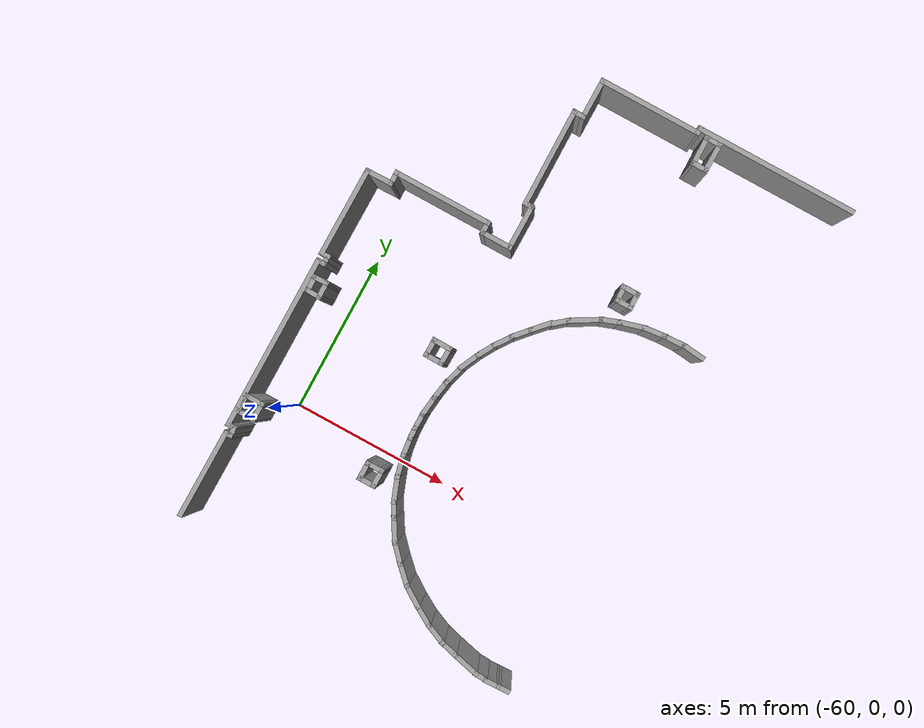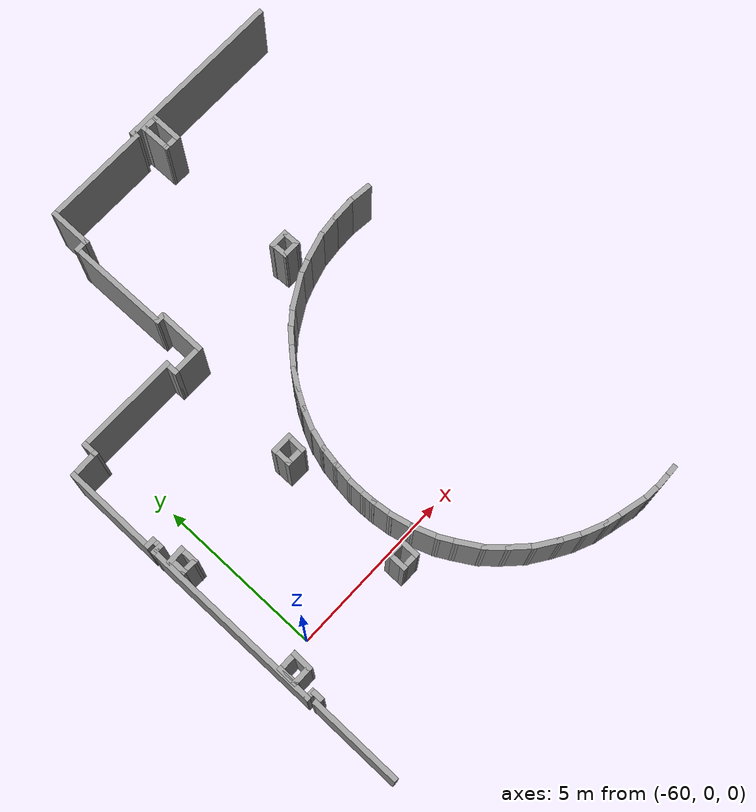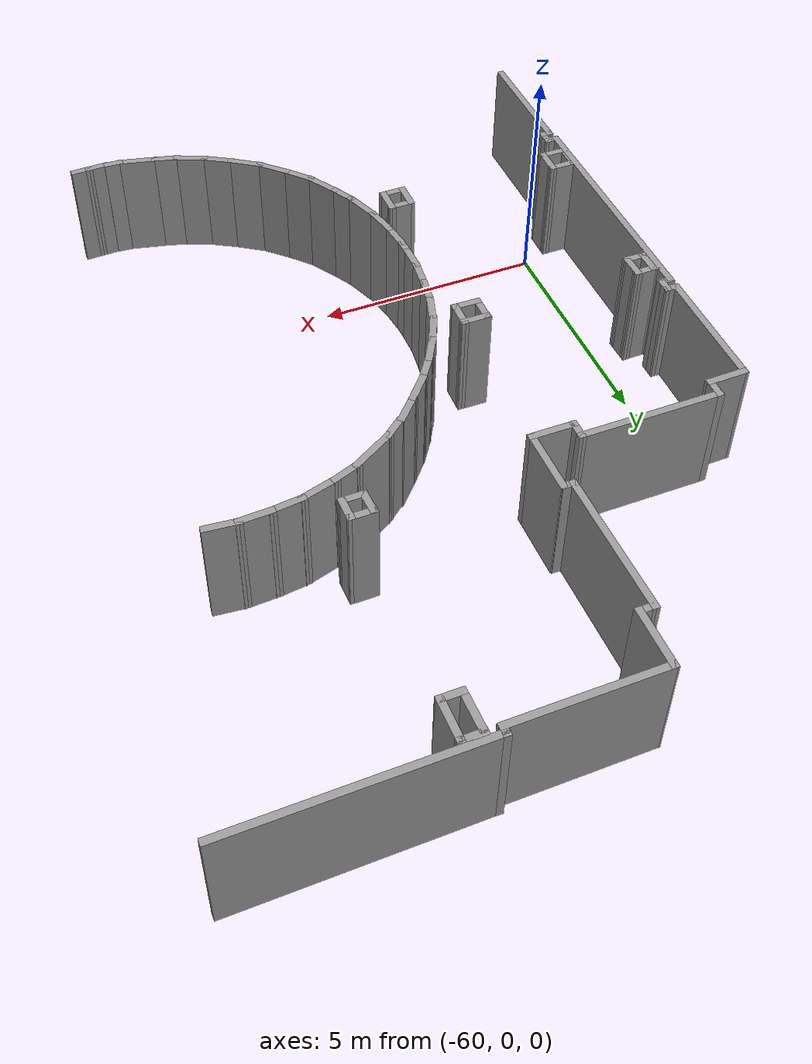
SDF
<sdf version="1.7">
 <model name="TD_n1_largo">
  <pose>-6.3187 -9.13173 0 0 -0 0</pose>
  <link name="Wall_192">
   <collision name="Wall_192_Collision">
    <geometry><box><size>0.63277 0.15 2.5</size></box></geometry>
    <pose>0 0 1.25 0 -0 0</pose>
   </collision>
   <visual name="Wall_192_Visual">
    <pose>0 0 1.25 0 -0 0</pose>
    <geometry><box><size>0.63277 0.15 2.5</size></box></geometry>
    <material>
     <script><uri>file://media/materials/scripts/gazebo.material</uri><name>Gazebo/Grey</name></script>
     <ambient>1 1 1 1</ambient>
    </material>
    <meta><layer>0</layer></meta>
   </visual>
   <pose>-50.8163 8.60408 0 0 -0 1.57037</pose>
  </link>
  <link name="Wall_193">
   <collision name="Wall_193_Collision">
    <geometry><box><size>0.604742 0.15 2.5</size></box></geometry>
    <pose>0 0 1.25 0 -0 0</pose>
   </collision>
   <visual name="Wall_193_Visual">
    <pose>0 0 1.25 0 -0 0</pose>
    <geometry><box><size>0.604742 0.15 2.5</size></box></geometry>
    <material>
     <script><uri>file://media/materials/scripts/gazebo.material</uri><name>Gazebo/Grey</name></script>
     <ambient>1 1 1 1</ambient>
    </material>
    <meta><layer>0</layer></meta>
   </visual>
   <pose>-50.5889 8.84546 0 0 -0 0</pose>
  </link>
  <link name="Wall_194">
   <collision name="Wall_194_Collision">
    <geometry><box><size>0.63285 0.15 2.5</size></box></geometry>
    <pose>0 0 1.25 0 -0 0</pose>
   </collision>
   <visual name="Wall_194_Visual">
    <pose>0 0 1.25 0 -0 0</pose>
    <geometry><box><size>0.63285 0.15 2.5</size></box></geometry>
    <material>
     <script><uri>file://media/materials/scripts/gazebo.material</uri><name>Gazebo/Grey</name></script>
     <ambient>1 1 1 1</ambient>
    </material>
    <meta><layer>0</layer></meta>
   </visual>
   <pose>-50.3621 8.60408 0 0 -0 -1.57341</pose>
  </link>
  <link name="Wall_195">
   <collision name="Wall_195_Collision">
    <geometry><box><size>0.603938 0.15 2.5</size></box></geometry>
    <pose>0 0 1.25 0 -0 0</pose>
   </collision>
   <visual name="Wall_195_Visual">
    <pose>0 0 1.25 0 -0 0</pose>
    <geometry><box><size>0.603938 0.15 2.5</size></box></geometry>
    <material>
     <script><uri>file://media/materials/scripts/gazebo.material</uri><name>Gazebo/Grey</name></script>
     <ambient>1 1 1 1</ambient>
    </material>
    <meta><layer>0</layer></meta>
   </visual>
   <pose>-50.5896 8.36269 0 0 -0 3.14159</pose>
  </link>
  <link name="Wall_197">
   <collision name="Wall_197_Collision">
    <geometry><box><size>0.648806 0.15 2.5</size></box></geometry>
    <pose>0 0 1.25 0 -0 0</pose>
   </collision>
   <visual name="Wall_197_Visual">
    <pose>0 0 1.25 0 -0 0</pose>
    <geometry><box><size>0.648806 0.15 2.5</size></box></geometry>
    <material>
     <script><uri>file://media/materials/scripts/gazebo.material</uri><name>Gazebo/Grey</name></script>
     <ambient>1 1 1 1</ambient>
    </material>
    <meta><layer>0</layer></meta>
   </visual>
   <pose>-54.8175 8.62541 0 0 -0 1.55396</pose>
  </link>
  <link name="Wall_198">
   <collision name="Wall_198_Collision">
    <geometry><box><size>0.661603 0.15 2.5</size></box></geometry>
    <pose>0 0 1.25 0 -0 0</pose>
   </collision>
   <visual name="Wall_198_Visual">
    <pose>0 0 1.25 0 -0 0</pose>
    <geometry><box><size>0.661603 0.15 2.5</size></box></geometry>
    <material>
     <script><uri>file://media/materials/scripts/gazebo.material</uri><name>Gazebo/Grey</name></script>
     <ambient>1 1 1 1</ambient>
    </material>
    <meta><layer>0</layer></meta>
   </visual>
   <pose>-54.5575 8.87541 0 0 -0 0.002473</pose>
  </link>
  <link name="Wall_199">
   <collision name="Wall_199_Collision">
    <geometry><box><size>0.651336 0.15 2.5</size></box></geometry>
    <pose>0 0 1.25 0 -0 0</pose>
   </collision>
   <visual name="Wall_199_Visual">
    <pose>0 0 1.25 0 -0 0</pose>
    <geometry><box><size>0.651336 0.15 2.5</size></box></geometry>
    <material>
     <script><uri>file://media/materials/scripts/gazebo.material</uri><name>Gazebo/Grey</name></script>
     <ambient>1 1 1 1</ambient>
    </material>
    <meta><layer>0</layer></meta>
   </visual>
   <pose>-54.3075 8.62541 0 0 -0 -1.59394</pose>
  </link>
  <link name="Wall_200">
   <collision name="Wall_200_Collision">
    <geometry><box><size>0.6484 0.15 2.5</size></box></geometry>
    <pose>0 0 1.25 0 -0 0</pose>
   </collision>
   <visual name="Wall_200_Visual">
    <pose>0 0 1.25 0 -0 0</pose>
    <geometry><box><size>0.6484 0.15 2.5</size></box></geometry>
    <material>
     <script><uri>file://media/materials/scripts/gazebo.material</uri><name>Gazebo/Grey</name></script>
     <ambient>1 1 1 1</ambient>
    </material>
    <meta><layer>0</layer></meta>
   </visual>
   <pose>-54.5625 8.37541 0 0 -0 3.13905</pose>
  </link>
  <link name="Wall_207">
   <collision name="Wall_207_Collision">
    <geometry><box><size>2.82091 0.15 2.5</size></box></geometry>
    <pose>0 0 1.25 0 -0 0</pose>
   </collision>
   <visual name="Wall_207_Visual">
    <pose>0 0 1.25 0 -0 0</pose>
    <geometry><box><size>2.82091 0.15 2.5</size></box></geometry>
    <material>
     <script><uri>file://media/materials/scripts/gazebo.material</uri><name>Gazebo/Grey</name></script>
     <ambient>1 1 1 1</ambient>
    </material>
    <meta><layer>0</layer></meta>
   </visual>
   <pose>-54.8227 6.31234 0 0 -0 1.56573</pose>
  </link>
  <link name="Wall_208">
   <collision name="Wall_208_Collision">
    <geometry><box><size>0.303176 0.15 2.5</size></box></geometry>
    <pose>0 0 1.25 0 -0 0</pose>
   </collision>
   <visual name="Wall_208_Visual">
    <pose>0 0 1.25 0 -0 0</pose>
    <geometry><box><size>0.303176 0.15 2.5</size></box></geometry>
    <material>
     <script><uri>file://media/materials/scripts/gazebo.material</uri><name>Gazebo/Grey</name></script>
     <ambient>1 1 1 1</ambient>
    </material>
    <meta><layer>0</layer></meta>
   </visual>
   <pose>-54.7393 7.64814 0 0 -0 0.005143</pose>
  </link>
  <link name="Wall_209">
   <collision name="Wall_209_Collision">
    <geometry><box><size>0.402046 0.15 2.5</size></box></geometry>
    <pose>0 0 1.25 0 -0 0</pose>
   </collision>
   <visual name="Wall_209_Visual">
    <pose>0 0 1.25 0 -0 0</pose>
    <geometry><box><size>0.402046 0.15 2.5</size></box></geometry>
    <material>
     <script><uri>file://media/materials/scripts/gazebo.material</uri><name>Gazebo/Grey</name></script>
     <ambient>1 1 1 1</ambient>
    </material>
    <meta><layer>0</layer></meta>
   </visual>
   <pose>-54.6635 7.77455 0 0 -0 1.57686</pose>
  </link>
  <link name="Wall_210">
   <collision name="Wall_210_Collision">
    <geometry><box><size>0.356909 0.15 2.5</size></box></geometry>
    <pose>0 0 1.25 0 -0 0</pose>
   </collision>
   <visual name="Wall_210_Visual">
    <pose>0 0 1.25 0 -0 0</pose>
    <geometry><box><size>0.356909 0.15 2.5</size></box></geometry>
    <material>
     <script><uri>file://media/materials/scripts/gazebo.material</uri><name>Gazebo/Grey</name></script>
     <ambient>1 1 1 1</ambient>
    </material>
    <meta><layer>0</layer></meta>
   </visual>
   <pose>-54.7677 7.90073 0 0 -0 3.14003</pose>
  </link>
  <link name="Wall_211">
   <collision name="Wall_211_Collision">
    <geometry><box><size>5.48251 0.15 2.5</size></box></geometry>
    <pose>0 0 1.25 0 -0 0</pose>
   </collision>
   <visual name="Wall_211_Visual">
    <pose>0 0 1.25 0 -0 0</pose>
    <geometry><box><size>5.48251 0.15 2.5</size></box></geometry>
    <material>
     <script><uri>file://media/materials/scripts/gazebo.material</uri><name>Gazebo/Grey</name></script>
     <ambient>1 1 1 1</ambient>
    </material>
    <meta><layer>0</layer></meta>
   </visual>
   <pose>-54.8713 10.5671 0 0 -0 1.57083</pose>
  </link>
  <link name="Wall_213">
   <collision name="Wall_213_Collision">
    <geometry><box><size>0.346068 0.15 2.5</size></box></geometry>
    <pose>0 0 1.25 0 -0 0</pose>
   </collision>
   <visual name="Wall_213_Visual">
    <pose>0 0 1.25 0 -0 0</pose>
    <geometry><box><size>0.346068 0.15 2.5</size></box></geometry>
    <material>
     <script><uri>file://media/materials/scripts/gazebo.material</uri><name>Gazebo/Grey</name></script>
     <ambient>1 1 1 1</ambient>
    </material>
    <meta><layer>0</layer></meta>
   </visual>
   <pose>-54.7744 13.2759 0 0 -0 -0.002897</pose>
  </link>
  <link name="Wall_216">
   <collision name="Wall_216_Collision">
    <geometry><box><size>0.344392 0.15 2.5</size></box></geometry>
    <pose>0 0 1.25 0 -0 0</pose>
   </collision>
   <visual name="Wall_216_Visual">
    <pose>0 0 1.25 0 -0 0</pose>
    <geometry><box><size>0.344392 0.15 2.5</size></box></geometry>
    <material>
     <script><uri>file://media/materials/scripts/gazebo.material</uri><name>Gazebo/Grey</name></script>
     <ambient>1 1 1 1</ambient>
    </material>
    <meta><layer>0</layer></meta>
   </visual>
   <pose>-54.7771 13.5145 0 0 -0 -0.009615</pose>
  </link>
  <link name="Wall_217">
   <collision name="Wall_217_Collision">
    <geometry><box><size>0.357475 0.15 2.5</size></box></geometry>
    <pose>0 0 1.25 0 -0 0</pose>
   </collision>
   <visual name="Wall_217_Visual">
    <pose>0 0 1.25 0 -0 0</pose>
    <geometry><box><size>0.357475 0.15 2.5</size></box></geometry>
    <material>
     <script><uri>file://media/materials/scripts/gazebo.material</uri><name>Gazebo/Grey</name></script>
     <ambient>1 1 1 1</ambient>
    </material>
    <meta><layer>0</layer></meta>
   </visual>
   <pose>-54.6799 13.4099 0 0 -0 -1.5708</pose>
  </link>
  <link name="Wall_219">
   <collision name="Wall_219_Collision">
    <geometry><box><size>2.83471 0.15 2.5</size></box></geometry>
    <pose>0 0 1.25 0 -0 0</pose>
   </collision>
   <visual name="Wall_219_Visual">
    <pose>0 0 1.25 0 -0 0</pose>
    <geometry><box><size>2.83471 0.15 2.5</size></box></geometry>
    <material>
     <script><uri>file://media/materials/scripts/gazebo.material</uri><name>Gazebo/Grey</name></script>
     <ambient>1 1 1 1</ambient>
    </material>
    <meta><layer>0</layer></meta>
   </visual>
   <pose>-54.8748 14.8715 0 0 -0 1.56587</pose>
  </link>
  <link name="Wall_220">
   <collision name="Wall_220_Collision">
    <geometry><box><size>0.917164 0.15 2.5</size></box></geometry>
    <pose>0 0 1.25 0 -0 0</pose>
   </collision>
   <visual name="Wall_220_Visual">
    <pose>0 0 1.25 0 -0 0</pose>
    <geometry><box><size>0.917164 0.15 2.5</size></box></geometry>
    <material>
     <script><uri>file://media/materials/scripts/gazebo.material</uri><name>Gazebo/Grey</name></script>
     <ambient>1 1 1 1</ambient>
    </material>
    <meta><layer>0</layer></meta>
   </visual>
   <pose>-54.4846 16.2205 0 0 -0 0.01724</pose>
  </link>
  <link name="Wall_221">
   <collision name="Wall_221_Collision">
    <geometry><box><size>0.49385 0.15 2.5</size></box></geometry>
    <pose>0 0 1.25 0 -0 0</pose>
   </collision>
   <visual name="Wall_221_Visual">
    <pose>0 0 1.25 0 -0 0</pose>
    <geometry><box><size>0.49385 0.15 2.5</size></box></geometry>
    <material>
     <script><uri>file://media/materials/scripts/gazebo.material</uri><name>Gazebo/Grey</name></script>
     <ambient>1 1 1 1</ambient>
    </material>
    <meta><layer>0</layer></meta>
   </visual>
   <pose>-54.1011 16.399 0 0 -0 1.5708</pose>
  </link>
  <link name="Wall_222">
   <collision name="Wall_222_Collision">
    <geometry><box><size>3.13885 0.15 2.5</size></box></geometry>
    <pose>0 0 1.25 0 -0 0</pose>
   </collision>
   <visual name="Wall_222_Visual">
    <pose>0 0 1.25 0 -0 0</pose>
    <geometry><box><size>3.13885 0.15 2.5</size></box></geometry>
    <material>
     <script><uri>file://media/materials/scripts/gazebo.material</uri><name>Gazebo/Grey</name></script>
     <ambient>1 1 1 1</ambient>
    </material>
    <meta><layer>0</layer></meta>
   </visual>
   <pose>-52.6067 16.5709 0 0 -0 0</pose>
  </link>
  <link name="Wall_223">
   <collision name="Wall_223_Collision">
    <geometry><box><size>0.4674 0.15 2.5</size></box></geometry>
    <pose>0 0 1.25 0 -0 0</pose>
   </collision>
   <visual name="Wall_223_Visual">
    <pose>0 0 1.25 0 -0 0</pose>
    <geometry><box><size>0.4674 0.15 2.5</size></box></geometry>
    <material>
     <script><uri>file://media/materials/scripts/gazebo.material</uri><name>Gazebo/Grey</name></script>
     <ambient>1 1 1 1</ambient>
    </material>
    <meta><layer>0</layer></meta>
   </visual>
   <pose>-51.1123 16.4122 0 0 -0 -1.5708</pose>
  </link>
  <link name="Wall_224">
   <collision name="Wall_224_Collision">
    <geometry><box><size>1.03696 0.15 2.5</size></box></geometry>
    <pose>0 0 1.25 0 -0 0</pose>
   </collision>
   <visual name="Wall_224_Visual">
    <pose>0 0 1.25 0 -0 0</pose>
    <geometry><box><size>1.03696 0.15 2.5</size></box></geometry>
    <material>
     <script><uri>file://media/materials/scripts/gazebo.material</uri><name>Gazebo/Grey</name></script>
     <ambient>1 1 1 1</ambient>
    </material>
    <meta><layer>0</layer></meta>
   </visual>
   <pose>-50.6692 16.2535 0 0 -0 0</pose>
  </link>
  <link name="Wall_225">
   <collision name="Wall_225_Collision">
    <geometry><box><size>1.45934 0.15 2.5</size></box></geometry>
    <pose>0 0 1.25 0 -0 0</pose>
   </collision>
   <visual name="Wall_225_Visual">
    <pose>0 0 1.25 0 -0 0</pose>
    <geometry><box><size>1.45934 0.15 2.5</size></box></geometry>
    <material>
     <script><uri>file://media/materials/scripts/gazebo.material</uri><name>Gazebo/Grey</name></script>
     <ambient>1 1 1 1</ambient>
    </material>
    <meta><layer>0</layer></meta>
   </visual>
   <pose>-50.2262 16.9082 0 0 -0 1.5708</pose>
  </link>
  <link name="Wall_227">
   <collision name="Wall_227_Collision">
    <geometry><box><size>0.333138 0.15 2.5</size></box></geometry>
    <pose>0 0 1.25 0 -0 0</pose>
   </collision>
   <visual name="Wall_227_Visual">
    <pose>0 0 1.25 0 -0 0</pose>
    <geometry><box><size>0.333138 0.15 2.5</size></box></geometry>
    <material>
     <script><uri>file://media/materials/scripts/gazebo.material</uri><name>Gazebo/Grey</name></script>
     <ambient>1 1 1 1</ambient>
    </material>
    <meta><layer>0</layer></meta>
   </visual>
   <pose>-50.3427 17.5832 0 0 -0 3.14159</pose>
  </link>
  <link name="Wall_228">
   <collision name="Wall_228_Collision">
    <geometry><box><size>3.13091 0.15 2.5</size></box></geometry>
    <pose>0 0 1.25 0 -0 0</pose>
   </collision>
   <visual name="Wall_228_Visual">
    <pose>0 0 1.25 0 -0 0</pose>
    <geometry><box><size>3.13091 0.15 2.5</size></box></geometry>
    <material>
     <script><uri>file://media/materials/scripts/gazebo.material</uri><name>Gazebo/Grey</name></script>
     <ambient>1 1 1 1</ambient>
    </material>
    <meta><layer>0</layer></meta>
   </visual>
   <pose>-50.4491 19.0737 0 0 -0 1.581</pose>
  </link>
  <link name="Wall_229">
   <collision name="Wall_229_Collision">
    <geometry><box><size>0.438966 0.15 2.5</size></box></geometry>
    <pose>0 0 1.25 0 -0 0</pose>
   </collision>
   <visual name="Wall_229_Visual">
    <pose>0 0 1.25 0 -0 0</pose>
    <geometry><box><size>0.438966 0.15 2.5</size></box></geometry>
    <material>
     <script><uri>file://media/materials/scripts/gazebo.material</uri><name>Gazebo/Grey</name></script>
     <ambient>1 1 1 1</ambient>
    </material>
    <meta><layer>0</layer></meta>
   </visual>
   <pose>-50.3199 20.5641 0 0 -0 0</pose>
  </link>
  <link name="Wall_230">
   <collision name="Wall_230_Collision">
    <geometry><box><size>1.32107 0.15 2.5</size></box></geometry>
    <pose>0 0 1.25 0 -0 0</pose>
   </collision>
   <visual name="Wall_230_Visual">
    <pose>0 0 1.25 0 -0 0</pose>
    <geometry><box><size>1.32107 0.15 2.5</size></box></geometry>
    <material>
     <script><uri>file://media/materials/scripts/gazebo.material</uri><name>Gazebo/Grey</name></script>
     <ambient>1 1 1 1</ambient>
    </material>
    <meta><layer>0</layer></meta>
   </visual>
   <pose>-50.1754 21.1496 0 0 -0 1.5708</pose>
  </link>
  <link name="Wall_231">
   <collision name="Wall_231_Collision">
    <geometry><box><size>3.25021 0.15 2.5</size></box></geometry>
    <pose>0 0 1.25 0 -0 0</pose>
   </collision>
   <visual name="Wall_231_Visual">
    <pose>0 0 1.25 0 -0 0</pose>
    <geometry><box><size>3.25021 0.15 2.5</size></box></geometry>
    <material>
     <script><uri>file://media/materials/scripts/gazebo.material</uri><name>Gazebo/Grey</name></script>
     <ambient>1 1 1 1</ambient>
    </material>
    <meta><layer>0</layer></meta>
   </visual>
   <pose>-48.6253 21.7379 0 0 -0 0.001739</pose>
  </link>
  <link name="Wall_232">
   <collision name="Wall_232_Collision">
    <geometry><box><size>0.288046 0.15 2.5</size></box></geometry>
    <pose>0 0 1.25 0 -0 0</pose>
   </collision>
   <visual name="Wall_232_Visual">
    <pose>0 0 1.25 0 -0 0</pose>
    <geometry><box><size>0.288046 0.15 2.5</size></box></geometry>
    <material>
     <script><uri>file://media/materials/scripts/gazebo.material</uri><name>Gazebo/Grey</name></script>
     <ambient>1 1 1 1</ambient>
    </material>
    <meta><layer>0</layer></meta>
   </visual>
   <pose>-47.074 21.8096 0 0 -0 1.55359</pose>
  </link>
  <link name="Wall_233">
   <collision name="Wall_233_Collision">
    <geometry><box><size>5.13722 0.15 2.5</size></box></geometry>
    <pose>0 0 1.25 0 -0 0</pose>
   </collision>
   <visual name="Wall_233_Visual">
    <pose>0 0 1.25 0 -0 0</pose>
    <geometry><box><size>5.13722 0.15 2.5</size></box></geometry>
    <material>
     <script><uri>file://media/materials/scripts/gazebo.material</uri><name>Gazebo/Grey</name></script>
     <ambient>1 1 1 1</ambient>
    </material>
    <meta><layer>0</layer></meta>
   </visual>
   <pose>-44.5792 21.8819 0 0 -0 0.002636</pose>
  </link>
  <link name="Wall_240">
   <collision name="Wall_240_Collision">
    <geometry><box><size>0.566143 0.15 2.5</size></box></geometry>
    <pose>0 0 1.25 0 -0 0</pose>
   </collision>
   <visual name="Wall_240_Visual">
    <pose>0 0 1.25 0 -0 0</pose>
    <geometry><box><size>0.566143 0.15 2.5</size></box></geometry>
    <material>
     <script><uri>file://media/materials/scripts/gazebo.material</uri><name>Gazebo/Grey</name></script>
     <ambient>1 1 1 1</ambient>
    </material>
    <meta><layer>0</layer></meta>
   </visual>
   <pose>-46.5553 21.7384 0 0 -0 0.002785</pose>
  </link>
  <link name="Wall_241">
   <collision name="Wall_241_Collision">
    <geometry><box><size>0.976133 0.15 2.5</size></box></geometry>
    <pose>0 0 1.25 0 -0 0</pose>
   </collision>
   <visual name="Wall_241_Visual">
    <pose>0 0 1.25 0 -0 0</pose>
    <geometry><box><size>0.976133 0.15 2.5</size></box></geometry>
    <material>
     <script><uri>file://media/materials/scripts/gazebo.material</uri><name>Gazebo/Grey</name></script>
     <ambient>1 1 1 1</ambient>
    </material>
    <meta><layer>0</layer></meta>
   </visual>
   <pose>-46.3472 21.326 0 0 -0 -1.5708</pose>
  </link>
  <link name="Wall_242">
   <collision name="Wall_242_Collision">
    <geometry><box><size>0.55 0.15 2.5</size></box></geometry>
    <pose>0 0 1.25 0 -0 0</pose>
   </collision>
   <visual name="Wall_242_Visual">
    <pose>0 0 1.25 0 -0 0</pose>
    <geometry><box><size>0.55 0.15 2.5</size></box></geometry>
    <material>
     <script><uri>file://media/materials/scripts/gazebo.material</uri><name>Gazebo/Grey</name></script>
     <ambient>1 1 1 1</ambient>
    </material>
    <meta><layer>0</layer></meta>
   </visual>
   <pose>-46.5472 20.9129 0 0 -0 3.14159</pose>
  </link>
  <link name="Wall_243">
   <collision name="Wall_243_Collision">
    <geometry><box><size>0.932657 0.15 2.5</size></box></geometry>
    <pose>0 0 1.25 0 -0 0</pose>
   </collision>
   <visual name="Wall_243_Visual">
    <pose>0 0 1.25 0 -0 0</pose>
    <geometry><box><size>0.932657 0.15 2.5</size></box></geometry>
    <material>
     <script><uri>file://media/materials/scripts/gazebo.material</uri><name>Gazebo/Grey</name></script>
     <ambient>1 1 1 1</ambient>
    </material>
    <meta><layer>0</layer></meta>
   </visual>
   <pose>-46.7516 21.3042 0 0 -0 1.58191</pose>
  </link>
  <link name="Wall_250">
   <collision name="Wall_250_Collision">
    <geometry><box><size>0.603749 0.15 2.5</size></box></geometry>
    <pose>0 0 1.25 0 -0 0</pose>
   </collision>
   <visual name="Wall_250_Visual">
    <pose>0 0 1.25 0 -0 0</pose>
    <geometry><box><size>0.603749 0.15 2.5</size></box></geometry>
    <material>
     <script><uri>file://media/materials/scripts/gazebo.material</uri><name>Gazebo/Grey</name></script>
     <ambient>1 1 1 1</ambient>
    </material>
    <meta><layer>0</layer></meta>
   </visual>
   <pose>-46.579 16.8302 0 0 -0 0</pose>
  </link>
  <link name="Wall_251">
   <collision name="Wall_251_Collision">
    <geometry><box><size>0.573508 0.15 2.5</size></box></geometry>
    <pose>0 0 1.25 0 -0 0</pose>
   </collision>
   <visual name="Wall_251_Visual">
    <pose>0 0 1.25 0 -0 0</pose>
    <geometry><box><size>0.573508 0.15 2.5</size></box></geometry>
    <material>
     <script><uri>file://media/materials/scripts/gazebo.material</uri><name>Gazebo/Grey</name></script>
     <ambient>1 1 1 1</ambient>
    </material>
    <meta><layer>0</layer></meta>
   </visual>
   <pose>-46.3484 16.6185 0 0 -0 -1.55294</pose>
  </link>
  <link name="Wall_252">
   <collision name="Wall_252_Collision">
    <geometry><box><size>0.581068 0.15 2.5</size></box></geometry>
    <pose>0 0 1.25 0 -0 0</pose>
   </collision>
   <visual name="Wall_252_Visual">
    <pose>0 0 1.25 0 -0 0</pose>
    <geometry><box><size>0.581068 0.15 2.5</size></box></geometry>
    <material>
     <script><uri>file://media/materials/scripts/gazebo.material</uri><name>Gazebo/Grey</name></script>
     <ambient>1 1 1 1</ambient>
    </material>
    <meta><layer>0</layer></meta>
   </visual>
   <pose>-46.5601 16.4068 0 0 -0 3.14159</pose>
  </link>
  <link name="Wall_253">
   <collision name="Wall_253_Collision">
    <geometry><box><size>0.558598 0.15 2.5</size></box></geometry>
    <pose>0 0 1.25 0 -0 0</pose>
   </collision>
   <visual name="Wall_253_Visual">
    <pose>0 0 1.25 0 -0 0</pose>
    <geometry><box><size>0.558598 0.15 2.5</size></box></geometry>
    <material>
     <script><uri>file://media/materials/scripts/gazebo.material</uri><name>Gazebo/Grey</name></script>
     <ambient>1 1 1 1</ambient>
    </material>
    <meta><layer>0</layer></meta>
   </visual>
   <pose>-46.7831 16.611 0 0 -0 1.60782</pose>
  </link>
  <link name="Wall_261">
   <collision name="Wall_261_Collision">
    <geometry><box><size>0.583832 0.15 2.5</size></box></geometry>
    <pose>0 0 1.25 0 -0 0</pose>
   </collision>
   <visual name="Wall_261_Visual">
    <pose>0 0 1.25 0 -0 0</pose>
    <geometry><box><size>0.583832 0.15 2.5</size></box></geometry>
    <material>
     <script><uri>file://media/materials/scripts/gazebo.material</uri><name>Gazebo/Grey</name></script>
     <ambient>1 1 1 1</ambient>
    </material>
    <meta><layer>0</layer></meta>
   </visual>
   <pose>-54.5681 12.8136 0 0 -0 0.029333</pose>
  </link>
  <link name="Wall_262">
   <collision name="Wall_262_Collision">
    <geometry><box><size>0.603841 0.15 2.5</size></box></geometry>
    <pose>0 0 1.25 0 -0 0</pose>
   </collision>
   <visual name="Wall_262_Visual">
    <pose>0 0 1.25 0 -0 0</pose>
    <geometry><box><size>0.603841 0.15 2.5</size></box></geometry>
    <material>
     <script><uri>file://media/materials/scripts/gazebo.material</uri><name>Gazebo/Grey</name></script>
     <ambient>1 1 1 1</ambient>
    </material>
    <meta><layer>0</layer></meta>
   </visual>
   <pose>-54.3476 12.5931 0 0 -0 -1.55488</pose>
  </link>
  <link name="Wall_263">
   <collision name="Wall_263_Collision">
    <geometry><box><size>0.523152 0.15 2.5</size></box></geometry>
    <pose>0 0 1.25 0 -0 0</pose>
   </collision>
   <visual name="Wall_263_Visual">
    <pose>0 0 1.25 0 -0 0</pose>
    <geometry><box><size>0.523152 0.15 2.5</size></box></geometry>
    <material>
     <script><uri>file://media/materials/scripts/gazebo.material</uri><name>Gazebo/Grey</name></script>
     <ambient>1 1 1 1</ambient>
    </material>
    <meta><layer>0</layer></meta>
   </visual>
   <pose>-54.5305 12.3701 0 0 -0 3.12065</pose>
  </link>
  <link name="Wall_264">
   <collision name="Wall_264_Collision">
    <geometry><box><size>0.58457 0.15 2.5</size></box></geometry>
    <pose>0 0 1.25 0 -0 0</pose>
   </collision>
   <visual name="Wall_264_Visual">
    <pose>0 0 1.25 0 -0 0</pose>
    <geometry><box><size>0.58457 0.15 2.5</size></box></geometry>
    <material>
     <script><uri>file://media/materials/scripts/gazebo.material</uri><name>Gazebo/Grey</name></script>
     <ambient>1 1 1 1</ambient>
    </material>
    <meta><layer>0</layer></meta>
   </visual>
   <pose>-54.72 12.5913 0 0 -0 1.58395</pose>
  </link>
  <link name="Wall_266">
   <collision name="Wall_266_Collision">
    <geometry><box><size>0.658893 0.15 2.5</size></box></geometry>
    <pose>0 0 1.25 0 -0 0</pose>
   </collision>
   <visual name="Wall_266_Visual">
    <pose>0 0 1.25 0 -0 0</pose>
    <geometry><box><size>0.658893 0.15 2.5</size></box></geometry>
    <material>
     <script><uri>file://media/materials/scripts/gazebo.material</uri><name>Gazebo/Grey</name></script>
     <ambient>1 1 1 1</ambient>
    </material>
    <meta><layer>0</layer></meta>
   </visual>
   <pose>-50.5919 12.8686 0 0 -0 -0.011235</pose>
  </link>
  <link name="Wall_267">
   <collision name="Wall_267_Collision">
    <geometry><box><size>0.630409 0.15 2.5</size></box></geometry>
    <pose>0 0 1.25 0 -0 0</pose>
   </collision>
   <visual name="Wall_267_Visual">
    <pose>0 0 1.25 0 -0 0</pose>
    <geometry><box><size>0.630409 0.15 2.5</size></box></geometry>
    <material>
     <script><uri>file://media/materials/scripts/gazebo.material</uri><name>Gazebo/Grey</name></script>
     <ambient>1 1 1 1</ambient>
    </material>
    <meta><layer>0</layer></meta>
   </visual>
   <pose>-50.3432 12.6256 0 0 -0 -1.5946</pose>
  </link>
  <link name="Wall_268">
   <collision name="Wall_268_Collision">
    <geometry><box><size>0.641741 0.15 2.5</size></box></geometry>
    <pose>0 0 1.25 0 -0 0</pose>
   </collision>
   <visual name="Wall_268_Visual">
    <pose>0 0 1.25 0 -0 0</pose>
    <geometry><box><size>0.641741 0.15 2.5</size></box></geometry>
    <material>
     <script><uri>file://media/materials/scripts/gazebo.material</uri><name>Gazebo/Grey</name></script>
     <ambient>1 1 1 1</ambient>
    </material>
    <meta><layer>0</layer></meta>
   </visual>
   <pose>-50.5948 12.3883 0 0 -0 3.12996</pose>
  </link>
  <link name="Wall_269">
   <collision name="Wall_269_Collision">
    <geometry><box><size>0.613155 0.15 2.5</size></box></geometry>
    <pose>0 0 1.25 0 -0 0</pose>
   </collision>
   <visual name="Wall_269_Visual">
    <pose>0 0 1.25 0 -0 0</pose>
    <geometry><box><size>0.613155 0.15 2.5</size></box></geometry>
    <material>
     <script><uri>file://media/materials/scripts/gazebo.material</uri><name>Gazebo/Grey</name></script>
     <ambient>1 1 1 1</ambient>
    </material>
    <meta><layer>0</layer></meta>
   </visual>
   <pose>-50.8377 12.6228 0 0 -0 1.55845</pose>
  </link>
  <link name="Wall_284">
   <collision name="Wall_284_Collision">
    <geometry><box><size>0.521512 0.15 2.5</size></box></geometry>
    <pose>0 0 1.25 0 -0 0</pose>
   </collision>
   <visual name="Wall_284_Visual">
    <pose>0 0 1.25 0 -0 0</pose>
    <geometry><box><size>0.521512 0.15 2.5</size></box></geometry>
    <material>
     <script><uri>file://media/materials/scripts/gazebo.material</uri><name>Gazebo/Grey</name></script>
     <ambient>1 1 1 1</ambient>
    </material>
    <meta><layer>0</layer></meta>
   </visual>
   <pose>-44.6487 5.00707 0 0 -0 0.038127</pose>
  </link>
  <link name="Wall_285">
   <collision name="Wall_285_Collision">
    <geometry><box><size>0.478988 0.15 2.5</size></box></geometry>
    <pose>0 0 1.25 0 -0 0</pose>
   </collision>
   <visual name="Wall_285_Visual">
    <pose>0 0 1.25 0 -0 0</pose>
    <geometry><box><size>0.478988 0.15 2.5</size></box></geometry>
    <material>
     <script><uri>file://media/materials/scripts/gazebo.material</uri><name>Gazebo/Grey</name></script>
     <ambient>1 1 1 1</ambient>
    </material>
    <meta><layer>0</layer></meta>
   </visual>
   <pose>-44.2987 5.02033 0 0 -0 0.037576</pose>
  </link>
  <link name="Wall_312">
   <collision name="Wall_312_Collision">
    <geometry><box><size>0.770385 0.15 2.5</size></box></geometry>
    <pose>0 0 1.25 0 -0 0</pose>
   </collision>
   <visual name="Wall_312_Visual">
    <pose>0 0 1.25 0 -0 0</pose>
    <geometry><box><size>0.770385 0.15 2.5</size></box></geometry>
    <material>
     <script><uri>file://media/materials/scripts/gazebo.material</uri><name>Gazebo/Grey</name></script>
     <ambient>1 1 1 1</ambient>
    </material>
    <meta><layer>0</layer></meta>
   </visual>
   <pose>-44.1458 16.1519 0 0 -0 3.04332</pose>
  </link>
  <link name="Wall_313">
   <collision name="Wall_313_Collision">
    <geometry><box><size>0.785318 0.15 2.5</size></box></geometry>
    <pose>0 0 1.25 0 -0 0</pose>
   </collision>
   <visual name="Wall_313_Visual">
    <pose>0 0 1.25 0 -0 0</pose>
    <geometry><box><size>0.785318 0.15 2.5</size></box></geometry>
    <material>
     <script><uri>file://media/materials/scripts/gazebo.material</uri><name>Gazebo/Grey</name></script>
     <ambient>1 1 1 1</ambient>
    </material>
    <meta><layer>0</layer></meta>
   </visual>
   <pose>-44.7718 16.1693 0 0 -0 -3.10052</pose>
  </link>
  <link name="Wall_314">
   <collision name="Wall_314_Collision">
    <geometry><box><size>0.770385 0.15 2.5</size></box></geometry>
    <pose>0 0 1.25 0 -0 0</pose>
   </collision>
   <visual name="Wall_314_Visual">
    <pose>0 0 1.25 0 -0 0</pose>
    <geometry><box><size>0.770385 0.15 2.5</size></box></geometry>
    <material>
     <script><uri>file://media/materials/scripts/gazebo.material</uri><name>Gazebo/Grey</name></script>
     <ambient>1 1 1 1</ambient>
    </material>
    <meta><layer>0</layer></meta>
   </visual>
   <pose>-45.3979 16.1215 0 0 -0 -3.02939</pose>
  </link>
  <link name="Wall_315">
   <collision name="Wall_315_Collision">
    <geometry><box><size>0.882193 0.15 2.5</size></box></geometry>
    <pose>0 0 1.25 0 -0 0</pose>
   </collision>
   <visual name="Wall_315_Visual">
    <pose>0 0 1.25 0 -0 0</pose>
    <geometry><box><size>0.882193 0.15 2.5</size></box></geometry>
    <material>
     <script><uri>file://media/materials/scripts/gazebo.material</uri><name>Gazebo/Grey</name></script>
     <ambient>1 1 1 1</ambient>
    </material>
    <meta><layer>0</layer></meta>
   </visual>
   <pose>-46.0588 15.9867 0 0 -0 -2.86492</pose>
  </link>
  <link name="Wall_316">
   <collision name="Wall_316_Collision">
    <geometry><box><size>0.678221 0.15 2.5</size></box></geometry>
    <pose>0 0 1.25 0 -0 0</pose>
   </collision>
   <visual name="Wall_316_Visual">
    <pose>0 0 1.25 0 -0 0</pose>
    <geometry><box><size>0.678221 0.15 2.5</size></box></geometry>
    <material>
     <script><uri>file://media/materials/scripts/gazebo.material</uri><name>Gazebo/Grey</name></script>
     <ambient>1 1 1 1</ambient>
    </material>
    <meta><layer>0</layer></meta>
   </visual>
   <pose>-46.6588 15.7954 0 0 -0 -2.7886</pose>
  </link>
  <link name="Wall_317">
   <collision name="Wall_317_Collision">
    <geometry><box><size>1.09703 0.15 2.5</size></box></geometry>
    <pose>0 0 1.25 0 -0 0</pose>
   </collision>
   <visual name="Wall_317_Visual">
    <pose>0 0 1.25 0 -0 0</pose>
    <geometry><box><size>1.09703 0.15 2.5</size></box></geometry>
    <material>
     <script><uri>file://media/materials/scripts/gazebo.material</uri><name>Gazebo/Grey</name></script>
     <ambient>1 1 1 1</ambient>
    </material>
    <meta><layer>0</layer></meta>
   </visual>
   <pose>-47.3153 15.465 0 0 -0 -2.6122</pose>
  </link>
  <link name="Wall_318">
   <collision name="Wall_318_Collision">
    <geometry><box><size>0.588678 0.15 2.5</size></box></geometry>
    <pose>0 0 1.25 0 -0 0</pose>
   </collision>
   <visual name="Wall_318_Visual">
    <pose>0 0 1.25 0 -0 0</pose>
    <geometry><box><size>0.588678 0.15 2.5</size></box></geometry>
    <material>
     <script><uri>file://media/materials/scripts/gazebo.material</uri><name>Gazebo/Grey</name></script>
     <ambient>1 1 1 1</ambient>
    </material>
    <meta><layer>0</layer></meta>
   </visual>
   <pose>-47.8936 15.0867 0 0 -0 -2.45447</pose>
  </link>
  <link name="Wall_320">
   <collision name="Wall_320_Collision">
    <geometry><box><size>0.746714 0.15 2.5</size></box></geometry>
    <pose>0 0 1.25 0 -0 0</pose>
   </collision>
   <visual name="Wall_320_Visual">
    <pose>0 0 1.25 0 -0 0</pose>
    <geometry><box><size>0.746714 0.15 2.5</size></box></geometry>
    <material>
     <script><uri>file://media/materials/scripts/gazebo.material</uri><name>Gazebo/Grey</name></script>
     <ambient>1 1 1 1</ambient>
    </material>
    <meta><layer>0</layer></meta>
   </visual>
   <pose>-48.3371 14.6954 0 0 -0 -2.32528</pose>
  </link>
  <link name="Wall_321">
   <collision name="Wall_321_Collision">
    <geometry><box><size>0.741432 0.15 2.5</size></box></geometry>
    <pose>0 0 1.25 0 -0 0</pose>
   </collision>
   <visual name="Wall_321_Visual">
    <pose>0 0 1.25 0 -0 0</pose>
    <geometry><box><size>0.741432 0.15 2.5</size></box></geometry>
    <material>
     <script><uri>file://media/materials/scripts/gazebo.material</uri><name>Gazebo/Grey</name></script>
     <ambient>1 1 1 1</ambient>
    </material>
    <meta><layer>0</layer></meta>
   </visual>
   <pose>-48.7371 14.2563 0 0 -0 -2.29378</pose>
  </link>
  <link name="Wall_322">
   <collision name="Wall_322_Collision">
    <geometry><box><size>0.704957 0.15 2.5</size></box></geometry>
    <pose>0 0 1.25 0 -0 0</pose>
   </collision>
   <visual name="Wall_322_Visual">
    <pose>0 0 1.25 0 -0 0</pose>
    <geometry><box><size>0.704957 0.15 2.5</size></box></geometry>
    <material>
     <script><uri>file://media/materials/scripts/gazebo.material</uri><name>Gazebo/Grey</name></script>
     <ambient>1 1 1 1</ambient>
    </material>
    <meta><layer>0</layer></meta>
   </visual>
   <pose>-49.0936 13.8085 0 0 -0 -2.18922</pose>
  </link>
  <link name="Wall_323">
   <collision name="Wall_323_Collision">
    <geometry><box><size>0.70332 0.15 2.5</size></box></geometry>
    <pose>0 0 1.25 0 -0 0</pose>
   </collision>
   <visual name="Wall_323_Visual">
    <pose>0 0 1.25 0 -0 0</pose>
    <geometry><box><size>0.70332 0.15 2.5</size></box></geometry>
    <material>
     <script><uri>file://media/materials/scripts/gazebo.material</uri><name>Gazebo/Grey</name></script>
     <ambient>1 1 1 1</ambient>
    </material>
    <meta><layer>0</layer></meta>
   </visual>
   <pose>-49.3936 13.3432 0 0 -0 -2.09774</pose>
  </link>
  <link name="Wall_324">
   <collision name="Wall_324_Collision">
    <geometry><box><size>0.764629 0.15 2.5</size></box></geometry>
    <pose>0 0 1.25 0 -0 0</pose>
   </collision>
   <visual name="Wall_324_Visual">
    <pose>0 0 1.25 0 -0 0</pose>
    <geometry><box><size>0.764629 0.15 2.5</size></box></geometry>
    <material>
     <script><uri>file://media/materials/scripts/gazebo.material</uri><name>Gazebo/Grey</name></script>
     <ambient>1 1 1 1</ambient>
    </material>
    <meta><layer>0</layer></meta>
   </visual>
   <pose>-49.6631 12.8258 0 0 -0 -2.00913</pose>
  </link>
  <link name="Wall_326">
   <collision name="Wall_326_Collision">
    <geometry><box><size>0.647829 0.15 2.5</size></box></geometry>
    <pose>0 0 1.25 0 -0 0</pose>
   </collision>
   <visual name="Wall_326_Visual">
    <pose>0 0 1.25 0 -0 0</pose>
    <geometry><box><size>0.647829 0.15 2.5</size></box></geometry>
    <material>
     <script><uri>file://media/materials/scripts/gazebo.material</uri><name>Gazebo/Grey</name></script>
     <ambient>1 1 1 1</ambient>
    </material>
    <meta><layer>0</layer></meta>
   </visual>
   <pose>-49.8794 12.2252 0 0 -0 -1.86734</pose>
  </link>
  <link name="Wall_327">
   <collision name="Wall_327_Collision">
    <geometry><box><size>0.713112 0.15 2.5</size></box></geometry>
    <pose>0 0 1.25 0 -0 0</pose>
   </collision>
   <visual name="Wall_327_Visual">
    <pose>0 0 1.25 0 -0 0</pose>
    <geometry><box><size>0.713112 0.15 2.5</size></box></geometry>
    <material>
     <script><uri>file://media/materials/scripts/gazebo.material</uri><name>Gazebo/Grey</name></script>
     <ambient>1 1 1 1</ambient>
    </material>
    <meta><layer>0</layer></meta>
   </visual>
   <pose>-49.9984 11.7095 0 0 -0 -1.73595</pose>
  </link>
  <link name="Wall_328">
   <collision name="Wall_328_Collision">
    <geometry><box><size>0.722507 0.15 2.5</size></box></geometry>
    <pose>0 0 1.25 0 -0 0</pose>
   </collision>
   <visual name="Wall_328_Visual">
    <pose>0 0 1.25 0 -0 0</pose>
    <geometry><box><size>0.722507 0.15 2.5</size></box></geometry>
    <material>
     <script><uri>file://media/materials/scripts/gazebo.material</uri><name>Gazebo/Grey</name></script>
     <ambient>1 1 1 1</ambient>
    </material>
    <meta><layer>0</layer></meta>
   </visual>
   <pose>-50.0777 11.1474 0 0 -0 -1.68656</pose>
  </link>
  <link name="Wall_329">
   <collision name="Wall_329_Collision">
    <geometry><box><size>0.6261 0.15 2.5</size></box></geometry>
    <pose>0 0 1.25 0 -0 0</pose>
   </collision>
   <visual name="Wall_329_Visual">
    <pose>0 0 1.25 0 -0 0</pose>
    <geometry><box><size>0.6261 0.15 2.5</size></box></geometry>
    <material>
     <script><uri>file://media/materials/scripts/gazebo.material</uri><name>Gazebo/Grey</name></script>
     <ambient>1 1 1 1</ambient>
    </material>
    <meta><layer>0</layer></meta>
   </visual>
   <pose>-50.1108 10.625 0 0 -0 -1.5708</pose>
  </link>
  <link name="Wall_330">
   <collision name="Wall_330_Collision">
    <geometry><box><size>0.454462 0.15 2.5</size></box></geometry>
    <pose>0 0 1.25 0 -0 0</pose>
   </collision>
   <visual name="Wall_330_Visual">
    <pose>0 0 1.25 0 -0 0</pose>
    <geometry><box><size>0.454462 0.15 2.5</size></box></geometry>
    <material>
     <script><uri>file://media/materials/scripts/gazebo.material</uri><name>Gazebo/Grey</name></script>
     <ambient>1 1 1 1</ambient>
    </material>
    <meta><layer>0</layer></meta>
   </visual>
   <pose>-50.1042 10.2349 0 0 -0 -1.52734</pose>
  </link>
  <link name="Wall_331">
   <collision name="Wall_331_Collision">
    <geometry><box><size>0.709372 0.15 2.5</size></box></geometry>
    <pose>0 0 1.25 0 -0 0</pose>
   </collision>
   <visual name="Wall_331_Visual">
    <pose>0 0 1.25 0 -0 0</pose>
    <geometry><box><size>0.709372 0.15 2.5</size></box></geometry>
    <material>
     <script><uri>file://media/materials/scripts/gazebo.material</uri><name>Gazebo/Grey</name></script>
     <ambient>1 1 1 1</ambient>
    </material>
    <meta><layer>0</layer></meta>
   </visual>
   <pose>-50.0645 9.80505 0 0 -0 -1.45231</pose>
  </link>
  <link name="Wall_332">
   <collision name="Wall_332_Collision">
    <geometry><box><size>0.775502 0.15 2.5</size></box></geometry>
    <pose>0 0 1.25 0 -0 0</pose>
   </collision>
   <visual name="Wall_332_Visual">
    <pose>0 0 1.25 0 -0 0</pose>
    <geometry><box><size>0.775502 0.15 2.5</size></box></geometry>
    <material>
     <script><uri>file://media/materials/scripts/gazebo.material</uri><name>Gazebo/Grey</name></script>
     <ambient>1 1 1 1</ambient>
    </material>
    <meta><layer>0</layer></meta>
   </visual>
   <pose>-49.9587 9.22315 0 0 -0 -1.33607</pose>
  </link>
  <link name="Wall_333">
   <collision name="Wall_333_Collision">
    <geometry><box><size>0.869761 0.15 2.5</size></box></geometry>
    <pose>0 0 1.25 0 -0 0</pose>
   </collision>
   <visual name="Wall_333_Visual">
    <pose>0 0 1.25 0 -0 0</pose>
    <geometry><box><size>0.869761 0.15 2.5</size></box></geometry>
    <material>
     <script><uri>file://media/materials/scripts/gazebo.material</uri><name>Gazebo/Grey</name></script>
     <ambient>1 1 1 1</ambient>
    </material>
    <meta><layer>0</layer></meta>
   </visual>
   <pose>-49.7603 8.58174 0 0 -0 -1.21418</pose>
  </link>
  <link name="Wall_334">
   <collision name="Wall_334_Collision">
    <geometry><box><size>0.617574 0.15 2.5</size></box></geometry>
    <pose>0 0 1.25 0 -0 0</pose>
   </collision>
   <visual name="Wall_334_Visual">
    <pose>0 0 1.25 0 -0 0</pose>
    <geometry><box><size>0.617574 0.15 2.5</size></box></geometry>
    <material>
     <script><uri>file://media/materials/scripts/gazebo.material</uri><name>Gazebo/Grey</name></script>
     <ambient>1 1 1 1</ambient>
    </material>
    <meta><layer>0</layer></meta>
   </visual>
   <pose>-49.5223 8.03951 0 0 -0 -1.06919</pose>
  </link>
  <link name="Wall_335">
   <collision name="Wall_335_Collision">
    <geometry><box><size>0.862188 0.15 2.5</size></box></geometry>
    <pose>0 0 1.25 0 -0 0</pose>
   </collision>
   <visual name="Wall_335_Visual">
    <pose>0 0 1.25 0 -0 0</pose>
    <geometry><box><size>0.862188 0.15 2.5</size></box></geometry>
    <material>
     <script><uri>file://media/materials/scripts/gazebo.material</uri><name>Gazebo/Grey</name></script>
     <ambient>1 1 1 1</ambient>
    </material>
    <meta><layer>0</layer></meta>
   </visual>
   <pose>-49.2247 7.53035 0 0 -0 -1.02401</pose>
  </link>
  <link name="Wall_337">
   <collision name="Wall_337_Collision">
    <geometry><box><size>0.777177 0.15 2.5</size></box></geometry>
    <pose>0 0 1.25 0 -0 0</pose>
   </collision>
   <visual name="Wall_337_Visual">
    <pose>0 0 1.25 0 -0 0</pose>
    <geometry><box><size>0.777177 0.15 2.5</size></box></geometry>
    <material>
     <script><uri>file://media/materials/scripts/gazebo.material</uri><name>Gazebo/Grey</name></script>
     <ambient>1 1 1 1</ambient>
    </material>
    <meta><layer>0</layer></meta>
   </visual>
   <pose>-48.828 6.99474 0 0 -0 -0.830144</pose>
  </link>
  <link name="Wall_338">
   <collision name="Wall_338_Collision">
    <geometry><box><size>0.814021 0.15 2.5</size></box></geometry>
    <pose>0 0 1.25 0 -0 0</pose>
   </collision>
   <visual name="Wall_338_Visual">
    <pose>0 0 1.25 0 -0 0</pose>
    <geometry><box><size>0.814021 0.15 2.5</size></box></geometry>
    <material>
     <script><uri>file://media/materials/scripts/gazebo.material</uri><name>Gazebo/Grey</name></script>
     <ambient>1 1 1 1</ambient>
    </material>
    <meta><layer>0</layer></meta>
   </visual>
   <pose>-48.3783 6.53186 0 0 -0 -0.771315</pose>
  </link>
  <link name="Wall_339">
   <collision name="Wall_339_Collision">
    <geometry><box><size>0.835917 0.15 2.5</size></box></geometry>
    <pose>0 0 1.25 0 -0 0</pose>
   </collision>
   <visual name="Wall_339_Visual">
    <pose>0 0 1.25 0 -0 0</pose>
    <geometry><box><size>0.835917 0.15 2.5</size></box></geometry>
    <material>
     <script><uri>file://media/materials/scripts/gazebo.material</uri><name>Gazebo/Grey</name></script>
     <ambient>1 1 1 1</ambient>
    </material>
    <meta><layer>0</layer></meta>
   </visual>
   <pose>-47.8559 6.10866 0 0 -0 -0.59335</pose>
  </link>
  <link name="Wall_340">
   <collision name="Wall_340_Collision">
    <geometry><box><size>0.778292 0.15 2.5</size></box></geometry>
    <pose>0 0 1.25 0 -0 0</pose>
   </collision>
   <visual name="Wall_340_Visual">
    <pose>0 0 1.25 0 -0 0</pose>
    <geometry><box><size>0.778292 0.15 2.5</size></box></geometry>
    <material>
     <script><uri>file://media/materials/scripts/gazebo.material</uri><name>Gazebo/Grey</name></script>
     <ambient>1 1 1 1</ambient>
    </material>
    <meta><layer>0</layer></meta>
   </visual>
   <pose>-47.3005 5.7582 0 0 -0 -0.52959</pose>
  </link>
  <link name="Wall_341">
   <collision name="Wall_341_Collision">
    <geometry><box><size>0.783835 0.15 2.5</size></box></geometry>
    <pose>0 0 1.25 0 -0 0</pose>
   </collision>
   <visual name="Wall_341_Visual">
    <pose>0 0 1.25 0 -0 0</pose>
    <geometry><box><size>0.783835 0.15 2.5</size></box></geometry>
    <material>
     <script><uri>file://media/materials/scripts/gazebo.material</uri><name>Gazebo/Grey</name></script>
     <ambient>1 1 1 1</ambient>
    </material>
    <meta><layer>0</layer></meta>
   </visual>
   <pose>-46.7384 5.47386 0 0 -0 -0.407631</pose>
  </link>
  <link name="Wall_342">
   <collision name="Wall_342_Collision">
    <geometry><box><size>0.656882 0.15 2.5</size></box></geometry>
    <pose>0 0 1.25 0 -0 0</pose>
   </collision>
   <visual name="Wall_342_Visual">
    <pose>0 0 1.25 0 -0 0</pose>
    <geometry><box><size>0.656882 0.15 2.5</size></box></geometry>
    <material>
     <script><uri>file://media/materials/scripts/gazebo.material</uri><name>Gazebo/Grey</name></script>
     <ambient>1 1 1 1</ambient>
    </material>
    <meta><layer>0</layer></meta>
   </visual>
   <pose>-46.2028 5.2821 0 0 -0 -0.263964</pose>
  </link>
  <link name="Wall_343">
   <collision name="Wall_343_Collision">
    <geometry><box><size>0.951941 0.15 2.5</size></box></geometry>
    <pose>0 0 1.25 0 -0 0</pose>
   </collision>
   <visual name="Wall_343_Visual">
    <pose>0 0 1.25 0 -0 0</pose>
    <geometry><box><size>0.951941 0.15 2.5</size></box></geometry>
    <material>
     <script><uri>file://media/materials/scripts/gazebo.material</uri><name>Gazebo/Grey</name></script>
     <ambient>1 1 1 1</ambient>
    </material>
    <meta><layer>0</layer></meta>
   </visual>
   <pose>-45.568 5.1234 0 0 -0 -0.232979</pose>
  </link>
  <link name="Wall_344">
   <collision name="Wall_344_Collision">
    <geometry><box><size>0.42804 0.15 2.5</size></box></geometry>
    <pose>0 0 1.25 0 -0 0</pose>
   </collision>
   <visual name="Wall_344_Visual">
    <pose>0 0 1.25 0 -0 0</pose>
    <geometry><box><size>0.42804 0.15 2.5</size></box></geometry>
    <material>
     <script><uri>file://media/materials/scripts/gazebo.material</uri><name>Gazebo/Grey</name></script>
     <ambient>1 1 1 1</ambient>
    </material>
    <meta><layer>0</layer></meta>
   </visual>
   <pose>-45.039 5.02421 0 0 -0 -0.047583</pose>
  </link>
  <static>1</static>
 </model>
</sdf>
